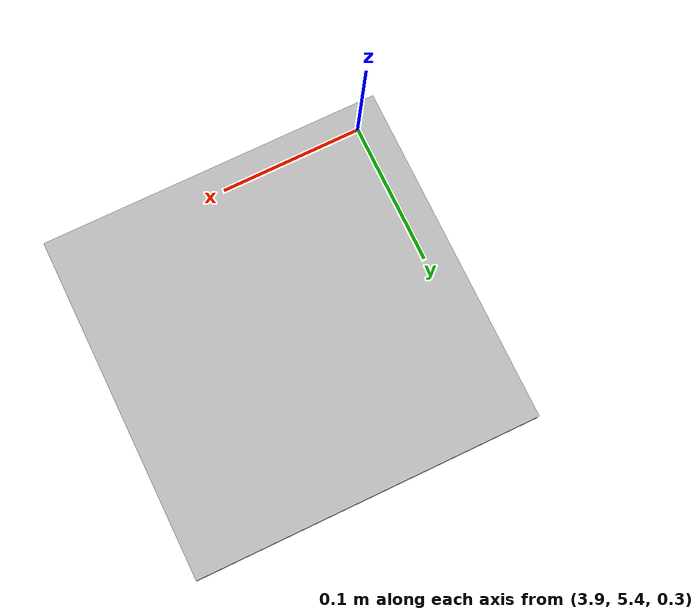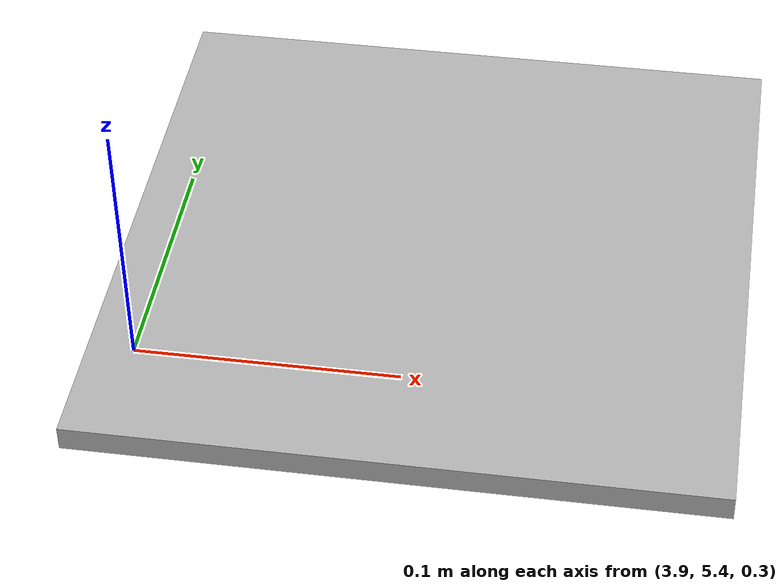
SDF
<?xml version="1.0"?>
<sdf version="1.5">
    <model name="2qr">
        <static>true</static>
        <link name="link">

             <collision name="collision2">
                <pose>4 5.5 0.27 0 0 0</pose>
                <geometry>
                    <mesh>
                        <uri>model://2qr/meshes/qr.stl</uri>
                    </mesh>
                </geometry>
            </collision>
             <visual name="visual2">

              <pose>4 5.5 0.27 0 0 0</pose>
              <geometry>
              <mesh>
                 <uri>model://2qr/meshes/qr2.dae</uri>
              </mesh>
              </geometry>

              <material>
                  <script>
                      <uri>model://2qr/materials/scripts</uri>
                      <uri>model://2qr/materials/textures</uri>
                      <name>qrMat/Diffuse</name>
                  </script>
              </material>
             </visual>

        </link>
    </model>
</sdf>
